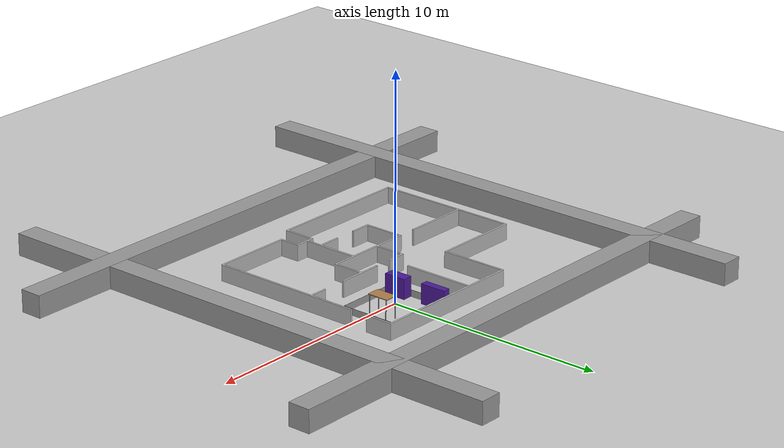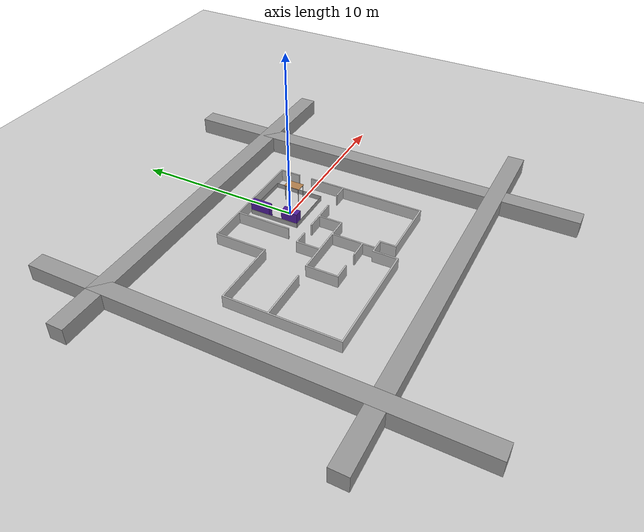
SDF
<sdf version="1.6">
 <world name="default">
  <light name="sun" type="directional">
   <pose>0 0 10 0 -0 0</pose>
   <diffuse>0.8 0.8 0.8 1</diffuse>
   <specular>0.2 0.2 0.2 1</specular>
   <attenuation>
    <range>1000</range>
    <constant>0.9</constant>
    <linear>0.01</linear>
    <quadratic>0.001</quadratic>
   </attenuation>
   <direction>-0.5 0.1 -0.9</direction>
  </light>
  <model name="ground_plane">
   <static>1</static>
   <link name="link">
    <collision name="collision">
     <geometry><plane><normal>0 0 1</normal><size>100 100</size></plane></geometry>
     <surface><friction><ode><mu>100</mu><mu2>50</mu2></ode></friction></surface>
    </collision>
    <visual name="visual">
     <cast_shadows>0</cast_shadows>
     <geometry><plane><normal>0 0 1</normal><size>100 100</size></plane></geometry>
     <material>
      <script><uri>file://media/materials/scripts/gazebo.material</uri><name>Gazebo/Grey</name></script>
     </material>
    </visual>
    <velocity_decay><linear>0</linear><angular>0</angular></velocity_decay>
   </link>
  </model>
  <physics name="default_physics" default="0" type="ode">
   <max_step_size>0.001</max_step_size>
   <real_time_factor>1</real_time_factor>
   <real_time_update_rate>1000</real_time_update_rate>
  </physics>
  <scene><ambient>0.4 0.4 0.4 1</ambient><background>0.7 0.7 0.7 1</background><shadows>1</shadows></scene>
  <spherical_coordinates>
   <surface_model>EARTH_WGS84</surface_model>
   <latitude_deg>0</latitude_deg>
   <longitude_deg>0</longitude_deg>
   <elevation>0</elevation>
   <heading_deg>0</heading_deg>
  </spherical_coordinates>
  <model name="iceira302">
   <link name="iceira302">
    <inertial>
     <pose>-0.51712 -1.0217 0.365 0 -0 0</pose>
     <mass>4047.1</mass>
     <inertia>
      <ixx>39193.3</ixx>
      <ixy>6157.57</ixy>
      <ixz>-3.10115e-12</ixz>
      <iyy>49928.6</iyy>
      <iyz>3.4948e-12</iyz>
      <izz>88762.4</izz>
     </inertia>
    </inertial>
    <collision name="iceira302_collision">
     <geometry><mesh><scale>1 1 1</scale><uri>model://meshes/iceira302.STL</uri></mesh></geometry>
    </collision>
    <visual name="iceira302_visual">
     <geometry><mesh><scale>1 1 1</scale><uri>model://meshes/iceira302.STL</uri></mesh></geometry>
    </visual>
    <velocity_decay><linear>0</linear><angular>0</angular></velocity_decay>
   </link>
   <pose>-2 -2 -2e-06 0 -1e-06 0</pose>
   <static>0</static>
  </model>
  <gravity>0 0 -9.8</gravity>
  <magnetic_field>6e-06 2.3e-05 -4.2e-05</magnetic_field>
  <atmosphere type="adiabatic"/>
  <model name="unit_box_0">
   <static>1</static>
   <pose>-1.35814 4.79357 0.499995 1e-05 -0 0</pose>
   <link name="link">
    <inertial>
     <mass>1</mass>
     <inertia>
      <ixx>0.166667</ixx>
      <ixy>0</ixy>
      <ixz>0</ixz>
      <iyy>0.166667</iyy>
      <iyz>0</iyz>
      <izz>0.166667</izz>
     </inertia>
    </inertial>
    <collision name="collision"><geometry><box><size>25 1 1</size></box></geometry></collision>
    <visual name="visual">
     <geometry><box><size>25 1 1</size></box></geometry>
     <material>
      <script><name>Gazebo/Grey</name><uri>file://media/materials/scripts/gazebo.material</uri></script>
     </material>
    </visual>
   </link>
  </model>
  <model name="unit_box_1">
   <static>1</static>
   <pose>5.9512 -2.8089 0.499995 0 1e-05 0</pose>
   <link name="link">
    <inertial>
     <mass>1</mass>
     <inertia>
      <ixx>0.166667</ixx>
      <ixy>0</ixy>
      <ixz>0</ixz>
      <iyy>0.166667</iyy>
      <iyz>0</iyz>
      <izz>0.166667</izz>
     </inertia>
    </inertial>
    <collision name="collision"><geometry><box><size>1 25 1</size></box></geometry></collision>
    <visual name="visual">
     <geometry><box><size>1 25 1</size></box></geometry>
     <material>
      <script><name>Gazebo/Grey</name><uri>file://media/materials/scripts/gazebo.material</uri></script>
     </material>
    </visual>
   </link>
  </model>
  <model name="unit_box_2">
   <static>1</static>
   <pose>-2.09498 -10.3479 0.499995 0 -1e-05 0</pose>
   <link name="link">
    <inertial>
     <mass>1</mass>
     <inertia>
      <ixx>0.166667</ixx>
      <ixy>0</ixy>
      <ixz>0</ixz>
      <iyy>0.166667</iyy>
      <iyz>0</iyz>
      <izz>0.166667</izz>
     </inertia>
    </inertial>
    <collision name="collision"><geometry><box><size>25 1 1</size></box></geometry></collision>
    <visual name="visual">
     <geometry><box><size>25 1 1</size></box></geometry>
     <material>
      <script><name>Gazebo/Grey</name><uri>file://media/materials/scripts/gazebo.material</uri></script>
     </material>
    </visual>
   </link>
  </model>
  <model name="unit_box_3">
   <static>1</static>
   <pose>-10.6855 -3.41133 0.499995 0 1e-05 0</pose>
   <link name="link">
    <inertial>
     <mass>1</mass>
     <inertia>
      <ixx>0.166667</ixx>
      <ixy>0</ixy>
      <ixz>0</ixz>
      <iyy>0.166667</iyy>
      <iyz>0</iyz>
      <izz>0.166667</izz>
     </inertia>
    </inertial>
    <collision name="collision"><geometry><box><size>1 25 1</size></box></geometry></collision>
    <visual name="visual">
     <geometry><box><size>1 25 1</size></box></geometry>
     <material>
      <script><name>Gazebo/Grey</name><uri>file://media/materials/scripts/gazebo.material</uri></script>
     </material>
    </visual>
   </link>
  </model>
  <model name="unit_box_4">
   <static>1</static>
   <pose>-1 0.5 0.15 0 -0 0</pose>
   <link name="link">
    <inertial>
     <mass>1</mass>
     <inertia>
      <ixx>0.166667</ixx>
      <ixy>0</ixy>
      <ixz>0</ixz>
      <iyy>0.166667</iyy>
      <iyz>0</iyz>
      <izz>0.166667</izz>
     </inertia>
    </inertial>
    <collision name="collision"><geometry><box><size>0.01 3 0.3</size></box></geometry></collision>
    <visual name="visual">
     <geometry><box><size>0.01 3 0.3</size></box></geometry>
     <material>
      <script><name>Gazebo/Grey</name><uri>file://media/materials/scripts/gazebo.material</uri></script>
     </material>
    </visual>
   </link>
  </model>
  <model name="unit_box_5">
   <static>1</static>
   <pose>0.5 2 0.15 0 -0 0</pose>
   <link name="link">
    <inertial>
     <mass>1</mass>
     <inertia>
      <ixx>0.166667</ixx>
      <ixy>0</ixy>
      <ixz>0</ixz>
      <iyy>0.166667</iyy>
      <iyz>0</iyz>
      <izz>0.166667</izz>
     </inertia>
    </inertial>
    <collision name="collision"><geometry><box><size>3 0.01 0.3</size></box></geometry></collision>
    <visual name="visual">
     <geometry><box><size>3 0.01 0.3</size></box></geometry>
     <material>
      <script><name>Gazebo/Grey</name><uri>file://media/materials/scripts/gazebo.material</uri></script>
     </material>
    </visual>
   </link>
  </model>
  <model name="unit_box_6">
   <static>1</static>
   <pose>2 0.5 0.15 0 -0 0</pose>
   <link name="link">
    <inertial>
     <mass>1</mass>
     <inertia>
      <ixx>0.166667</ixx>
      <ixy>0</ixy>
      <ixz>0</ixz>
      <iyy>0.166667</iyy>
      <iyz>0</iyz>
      <izz>0.166667</izz>
     </inertia>
    </inertial>
    <collision name="collision"><geometry><box><size>0.01 3 0.3</size></box></geometry></collision>
    <visual name="visual">
     <geometry><box><size>0.01 3 0.3</size></box></geometry>
     <material>
      <script><name>Gazebo/Grey</name><uri>file://media/materials/scripts/gazebo.material</uri></script>
     </material>
    </visual>
   </link>
  </model>
  <model name="unit_box_7">
   <static>1</static>
   <pose>0.5 -1 0.15 0 -0 0</pose>
   <link name="link">
    <inertial>
     <mass>1</mass>
     <inertia>
      <ixx>0.166667</ixx>
      <ixy>0</ixy>
      <ixz>0</ixz>
      <iyy>0.166667</iyy>
      <iyz>0</iyz>
      <izz>0.166667</izz>
     </inertia>
    </inertial>
    <collision name="collision"><geometry><box><size>3 0.01 0.3</size></box></geometry></collision>
    <visual name="visual">
     <geometry><box><size>3 0.01 0.3</size></box></geometry>
     <material>
      <script><name>Gazebo/Grey</name><uri>file://media/materials/scripts/gazebo.material</uri></script>
     </material>
    </visual>
   </link>
  </model>
  <model name="unit_box_9">
   <pose>-0.764874 -0.494923 0.45 1e-06 -2e-06 -0.000248</pose>
   <link name="link">
    <inertial>
     <mass>1</mass>
     <inertia>
      <ixx>0.166667</ixx>
      <ixy>0</ixy>
      <ixz>0</ixz>
      <iyy>0.166667</iyy>
      <iyz>0</iyz>
      <izz>0.166667</izz>
     </inertia>
    </inertial>
    <collision name="collision"><geometry><box><size>0.46 1 0.9</size></box></geometry></collision>
    <visual name="visual">
     <geometry><box><size>0.46 1 0.9</size></box></geometry>
     <material>
      <script><name>Gazebo/Indigo</name><uri>file://media/materials/scripts/gazebo.material</uri></script>
     </material>
    </visual>
   </link>
  </model>
  <model name="unit_box_10">
   <static>1</static>
   <pose>-0.84 1.4 0.45 0 -0 0</pose>
   <link name="link">
    <inertial>
     <mass>1</mass>
     <inertia>
      <ixx>0.166667</ixx>
      <ixy>0</ixy>
      <ixz>0</ixz>
      <iyy>0.166667</iyy>
      <iyz>0</iyz>
      <izz>0.166667</izz>
     </inertia>
    </inertial>
    <collision name="collision"><geometry><box><size>0.32 1.2 0.9</size></box></geometry></collision>
    <visual name="visual">
     <geometry><box><size>0.32 1.2 0.9</size></box></geometry>
     <material>
      <script><name>Gazebo/Indigo</name><uri>file://media/materials/scripts/gazebo.material</uri></script>
     </material>
    </visual>
   </link>
  </model>
  <model name="table">
   <static>1</static>
   <link name="link">
    <collision name="surface">
     <pose>0 0 1 0 -0 0</pose>
     <geometry><box><size>1 0.6 0.03</size></box></geometry>
     <surface><friction><ode><mu>0.6</mu><mu2>0.6</mu2></ode></friction></surface>
    </collision>
    <visual name="visual1">
     <pose>0 0 1 0 -0 0</pose>
     <geometry><box><size>1 0.6 0.03</size></box></geometry>
     <material>
      <script><uri>file://media/materials/scripts/gazebo.material</uri><name>Gazebo/Wood</name></script>
     </material>
    </visual>
    <collision name="front_left_leg">
     <pose>0.43 0.28 0.5 0 -0 0</pose>
     <geometry><cylinder><radius>0.02</radius><length>1</length></cylinder></geometry>
    </collision>
    <visual name="front_left_leg">
     <pose>0.43 0.28 0.5 0 -0 0</pose>
     <geometry><cylinder><radius>0.02</radius><length>1</length></cylinder></geometry>
     <material>
      <script><uri>file://media/materials/scripts/gazebo.material</uri><name>Gazebo/Grey</name></script>
     </material>
    </visual>
    <collision name="front_right_leg">
     <pose>0.43 -0.28 0.5 0 -0 0</pose>
     <geometry><cylinder><radius>0.02</radius><length>1</length></cylinder></geometry>
    </collision>
    <visual name="front_right_leg">
     <pose>0.43 -0.28 0.5 0 -0 0</pose>
     <geometry><cylinder><radius>0.02</radius><length>1</length></cylinder></geometry>
     <material>
      <script><uri>file://media/materials/scripts/gazebo.material</uri><name>Gazebo/Grey</name></script>
     </material>
    </visual>
    <collision name="back_right_leg">
     <pose>-0.43 -0.28 0.5 0 -0 0</pose>
     <geometry><cylinder><radius>0.02</radius><length>1</length></cylinder></geometry>
    </collision>
    <visual name="back_right_leg">
     <pose>-0.43 -0.28 0.5 0 -0 0</pose>
     <geometry><cylinder><radius>0.02</radius><length>1</length></cylinder></geometry>
     <material>
      <script><uri>file://media/materials/scripts/gazebo.material</uri><name>Gazebo/Grey</name></script>
     </material>
    </visual>
    <collision name="back_left_leg">
     <pose>-0.43 0.28 0.5 0 -0 0</pose>
     <geometry><cylinder><radius>0.02</radius><length>1</length></cylinder></geometry>
    </collision>
    <visual name="back_left_leg">
     <pose>-0.43 0.28 0.5 0 -0 0</pose>
     <geometry><cylinder><radius>0.02</radius><length>1</length></cylinder></geometry>
     <material>
      <script><uri>file://media/materials/scripts/gazebo.material</uri><name>Gazebo/Grey</name></script>
     </material>
    </visual>
    <inertial>
     <inertia><ixx>1</ixx><ixy>0</ixy><ixz>0</ixz><iyy>1</iyy><iyz>0</iyz><izz>1</izz></inertia>
     <mass>1</mass>
    </inertial>
   </link>
   <pose>1.4 0.5 0 0 -0 1.57</pose>
  </model>
 </world>
</sdf>
